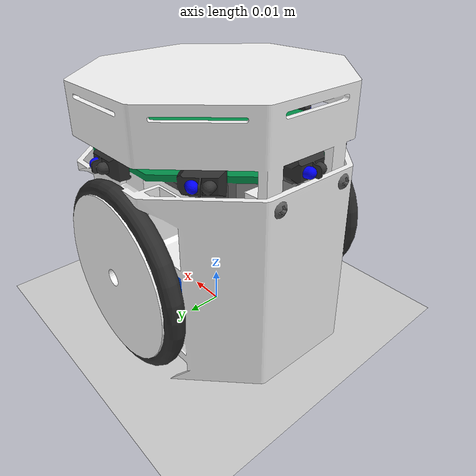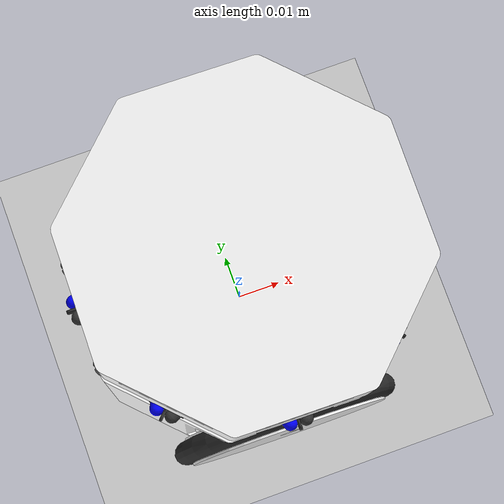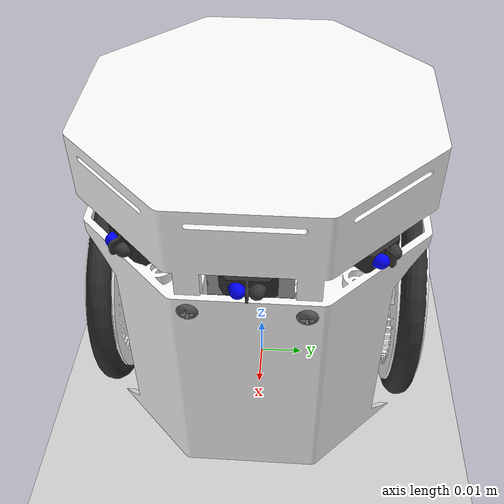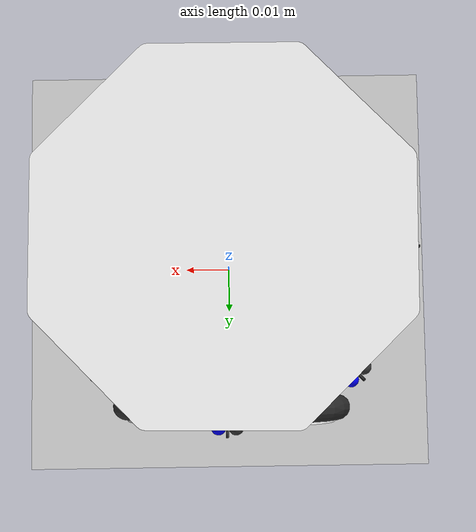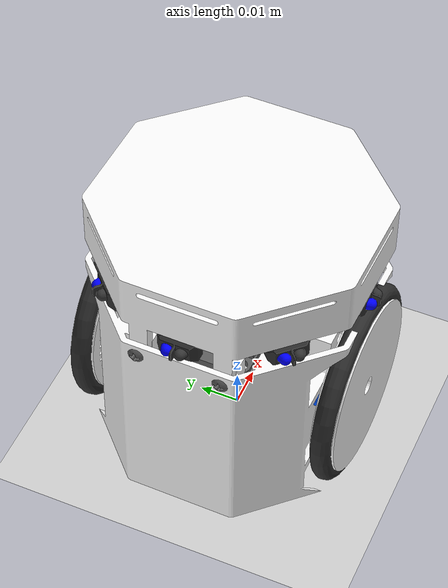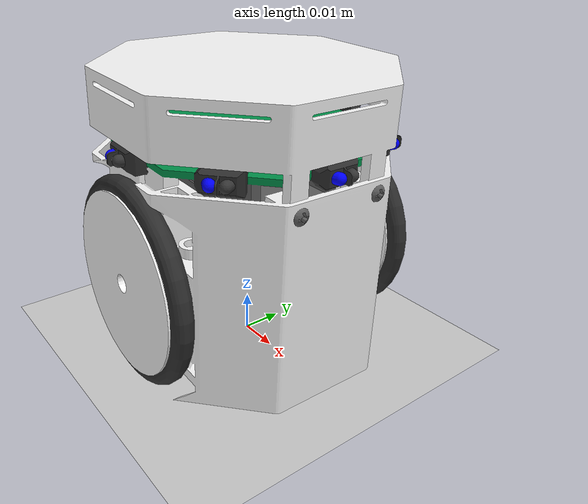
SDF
<sdf version="1.6">
 <world name="default">
  <model name="ground_plane">
   <static>1</static>
   <link name="link">
    <collision name="collision">
     <geometry><plane><normal>0 0 1</normal><size>100 100</size></plane></geometry>
     <surface><friction><ode><mu>100</mu><mu2>50</mu2></ode></friction></surface>
    </collision>
    <visual name="visual">
     <cast_shadows>0</cast_shadows>
     <geometry><plane><normal>0 0 1</normal><size>100 100</size></plane></geometry>
     <material>
      <script><uri>file://media/materials/scripts/gazebo.material</uri><name>Gazebo/Grey</name></script>
     </material>
    </visual>
   </link>
  </model>
  <light name="sun" type="directional">
   <pose>0 0 10 0 -0 0</pose>
   <diffuse>0.8 0.8 0.8 1</diffuse>
   <specular>0.2 0.2 0.2 1</specular>
   <attenuation>
    <range>1000</range>
    <constant>0.9</constant>
    <linear>0.01</linear>
    <quadratic>0.001</quadratic>
   </attenuation>
   <direction>-0.5 0.1 -0.9</direction>
  </light>
  <gravity>0 0 -9.8</gravity>
  <magnetic_field>6e-06 2.3e-05 -4.2e-05</magnetic_field>
  <atmosphere type="adiabatic"/>
  <physics name="default_physics" default="0" type="ode">
   <max_step_size>0.001</max_step_size>
   <real_time_factor>1</real_time_factor>
   <real_time_update_rate>1000</real_time_update_rate>
  </physics>
  <scene><ambient>0.4 0.4 0.4 1</ambient><background>0.7 0.7 0.7 1</background><shadows>1</shadows></scene>
  <spherical_coordinates>
   <surface_model>EARTH_WGS84</surface_model>
   <latitude_deg>0</latitude_deg>
   <longitude_deg>0</longitude_deg>
   <elevation>0</elevation>
   <heading_deg>0</heading_deg>
  </spherical_coordinates>
  <model name="hero">
   <link name="base_link">
    <inertial>
     <pose>1e-05 0 0.003918 0 -0 0</pose>
     <mass>0.097</mass>
     <inertia>
      <ixx>4.61045e-05</ixx>
      <ixy>0</ixy>
      <ixz>-3.40825e-08</ixz>
      <iyy>5.03087e-05</iyy>
      <iyz>0</iyz>
      <izz>3.63564e-05</izz>
     </inertia>
    </inertial>
    <collision name="base_link_collision">
     <pose>0 0 0 0 -0 -3.14159</pose>
     <geometry>
      <mesh>
       <scale>1 1 1</scale>
       <uri>/home/rezeck/mega/Projects/ROS/src/hero_common/hero_description/meshes/base_link.dae</uri>
      </mesh>
     </geometry>
    </collision>
    <collision name="base_link_fixed_joint_lump__hat_link_collision_1">
     <pose>0.0001 0 0.038 0 -0 0</pose>
     <geometry>
      <mesh>
       <scale>1 1 1</scale>
       <uri>/home/rezeck/mega/Projects/ROS/src/hero_common/hero_description/meshes/hat.dae</uri>
      </mesh>
     </geometry>
    </collision>
    <visual name="base_link_visual">
     <pose>0 0 0 0 -0 -3.14159</pose>
     <geometry>
      <mesh>
       <scale>1 1 1</scale>
       <uri>/home/rezeck/mega/Projects/ROS/src/hero_common/hero_description/meshes/base_link.dae</uri>
      </mesh>
     </geometry>
    </visual>
    <visual name="base_link_fixed_joint_lump__hat_link_visual_1">
     <pose>0.0001 0 0.038 0 -0 0</pose>
     <geometry>
      <mesh>
       <scale>1 1 1</scale>
       <uri>/home/rezeck/mega/Projects/ROS/src/hero_common/hero_description/meshes/hat.dae</uri>
      </mesh>
     </geometry>
     <plugin name="gazebo_ros_model_color" filename="libgazebo_ros_model_color.so">
      <robotNamespace>/</robotNamespace>
      <serviceName>/hat_color</serviceName>
      <color>0.4 0.0 0.0 1.0</color>
     </plugin>
     <material><script><uri>__default__</uri><name>__default__</name></script></material>
    </visual>
   </link>
   <link name="left_wheel_link">
    <pose>0 -0.03115 0 0 -0 0</pose>
    <inertial>
     <pose>0 0 0 -1.5708 0 0</pose>
     <mass>0.01</mass>
     <inertia>
      <ixx>1.29652e-06</ixx>
      <ixy>0</ixy>
      <ixz>0</ixz>
      <iyy>1.29623e-06</iyy>
      <iyz>0</iyz>
      <izz>2.5547e-06</izz>
     </inertia>
    </inertial>
    <collision name="left_wheel_link_collision">
     <pose>0 0 0 -1.5708 0 0</pose>
     <geometry>
      <mesh>
       <scale>1 1 1</scale>
       <uri>/home/rezeck/mega/Projects/ROS/src/hero_common/hero_description/meshes/wheel.dae</uri>
      </mesh>
     </geometry>
    </collision>
    <visual name="left_wheel_link_visual">
     <pose>0 0 0 -1.5708 0 0</pose>
     <geometry>
      <mesh>
       <scale>1 1 1</scale>
       <uri>/home/rezeck/mega/Projects/ROS/src/hero_common/hero_description/meshes/wheel.dae</uri>
      </mesh>
     </geometry>
    </visual>
   </link>
   <joint name="left_wheel_joint" type="revolute">
    <child>left_wheel_link</child>
    <parent>base_link</parent>
    <axis>
     <xyz>0 1 0</xyz>
     <limit><lower>-1e+16</lower><upper>1e+16</upper></limit>
     <dynamics>
      <damping>0</damping>
      <friction>0</friction>
      <spring_reference>0</spring_reference>
      <spring_stiffness>0</spring_stiffness>
     </dynamics>
     <use_parent_model_frame>1</use_parent_model_frame>
    </axis>
   </joint>
   <link name="right_wheel_link">
    <pose>0 0.03115 0 0 -0 0</pose>
    <inertial>
     <pose>0 0 0 1.5708 -0 0</pose>
     <mass>0.01</mass>
     <inertia>
      <ixx>1.29652e-06</ixx>
      <ixy>0</ixy>
      <ixz>0</ixz>
      <iyy>1.29623e-06</iyy>
      <iyz>0</iyz>
      <izz>2.5547e-06</izz>
     </inertia>
    </inertial>
    <collision name="right_wheel_link_collision">
     <pose>0 0 0 1.5708 -0 0</pose>
     <geometry>
      <mesh>
       <scale>1 1 1</scale>
       <uri>/home/rezeck/mega/Projects/ROS/src/hero_common/hero_description/meshes/wheel.dae</uri>
      </mesh>
     </geometry>
    </collision>
    <visual name="right_wheel_link_visual">
     <pose>0 0 0 1.5708 -0 0</pose>
     <geometry>
      <mesh>
       <scale>1 1 1</scale>
       <uri>/home/rezeck/mega/Projects/ROS/src/hero_common/hero_description/meshes/wheel.dae</uri>
      </mesh>
     </geometry>
    </visual>
   </link>
   <joint name="right_wheel_joint" type="revolute">
    <child>right_wheel_link</child>
    <parent>base_link</parent>
    <axis>
     <xyz>0 1 0</xyz>
     <limit><lower>-1e+16</lower><upper>1e+16</upper></limit>
     <dynamics>
      <damping>0</damping>
      <friction>0</friction>
      <spring_reference>0</spring_reference>
      <spring_stiffness>0</spring_stiffness>
     </dynamics>
     <use_parent_model_frame>1</use_parent_model_frame>
    </axis>
   </joint>
   <plugin name="gazebo_ros_control" filename="libgazebo_ros_control.so">
    <robotNamespace>/</robotNamespace>
   </plugin>
   <static>0</static>
   <plugin name="differential_drive_controller" filename="libgazebo_ros_diff_drive.so">
    <alwaysOn>1</alwaysOn>
    <legacyMode>0</legacyMode>
    <updateRate>100</updateRate>
    <robotNamespace>/</robotNamespace>
    <leftJoint>left_wheel_joint</leftJoint>
    <rightJoint>right_wheel_joint</rightJoint>
    <wheelSeparation>0.0623</wheelSeparation>
    <wheelDiameter>0.0496</wheelDiameter>
    <torque>0.3</torque>
    <commandTopic>cmd_vel</commandTopic>
    <odometryTopic>odom</odometryTopic>
    <odometryFrame>odom</odometryFrame>
    <odometrySource>world</odometrySource>
    <publishTf>1</publishTf>
    <rosDebugLevel>na</rosDebugLevel>
    <wheelAcceleration>0</wheelAcceleration>
    <wheelTorque>0.3</wheelTorque>
    <robotBaseFrame>base_link</robotBaseFrame>
    <publishWheelTF>0</publishWheelTF>
    <publishWheelJointState>0</publishWheelJointState>
    <covariance_x>0.00001</covariance_x>
    <covariance_y>0.00001</covariance_y>
    <covariance_yaw>0.01</covariance_yaw>
   </plugin>
   <pose>-0.000535 -0.000357 0.025185 -0.000838 0.032123 -0.013423</pose>
  </model>
 </world>
</sdf>
